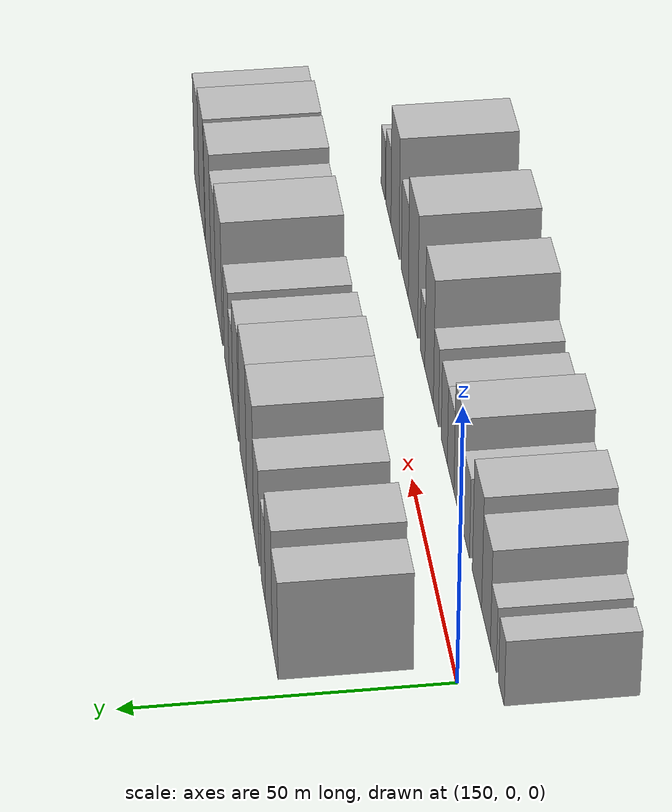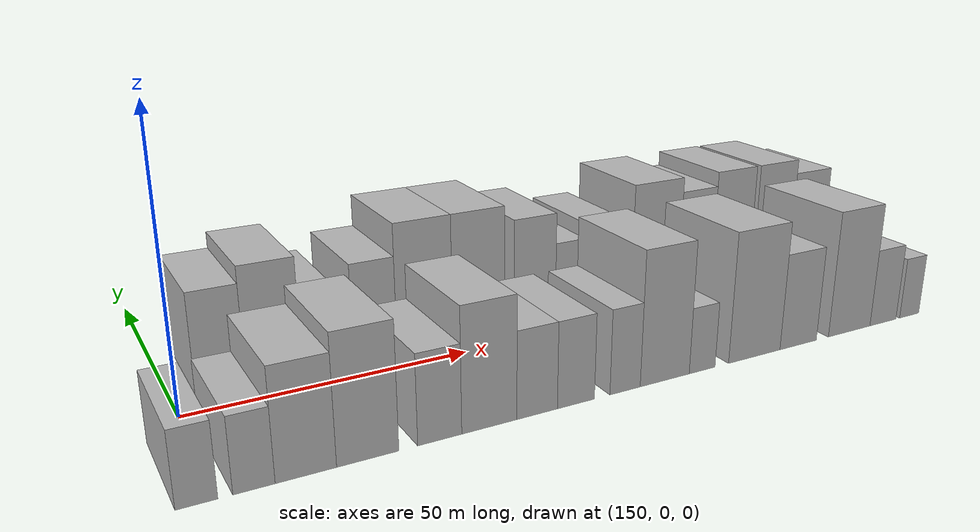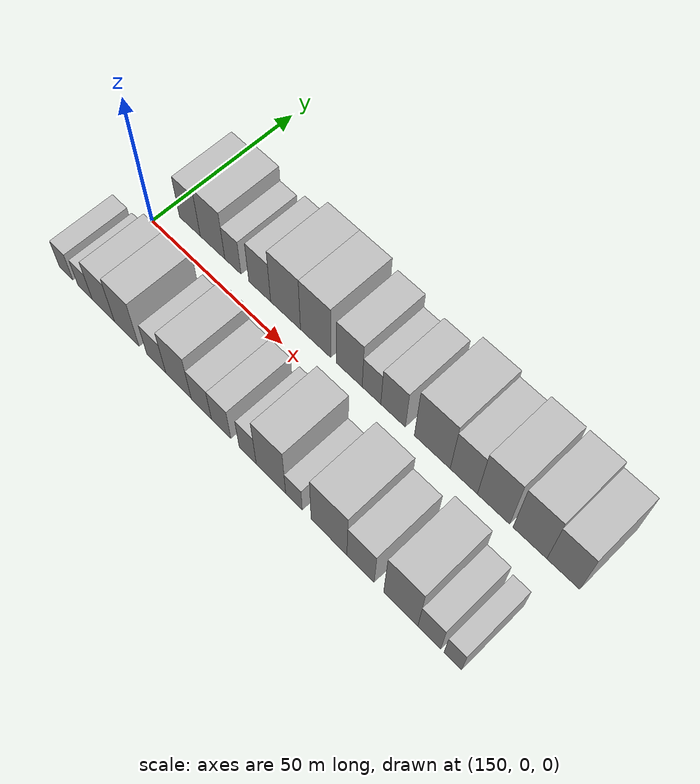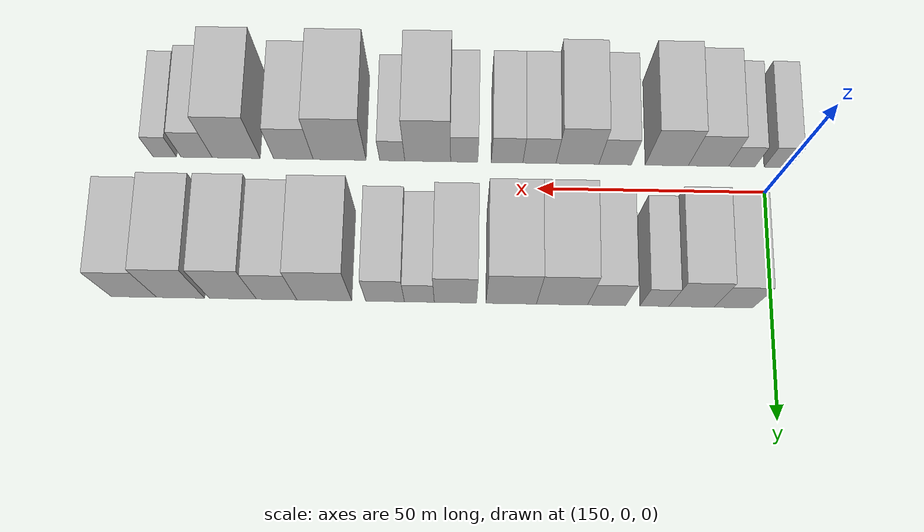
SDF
<sdf version="1.6">
 <world name="default">
  <model name="building_16">
   <static>1</static>
   <pose>158.0715 16.0000 0 0.000000 0.000000 1.570796</pose>
   <link name="link">
    <pose>0 0 9.00 0 0 0</pose>
    <collision name="collision"><geometry><box><size>20.0000 8.2967 18.0000</size></box></geometry></collision>
    <visual name="visual">
     <cast_shadows>0</cast_shadows>
     <geometry><box><size>20.0000 8.2967 18.0000</size></box></geometry>
     <material>
      <script>
       <uri>model://HANNAS_wall/materials/scripts</uri>
       <uri>model://HANNAS_wall/materials/textures</uri>
       <name>vrc/HANNAS_wall</name>
      </script>
     </material>
    </visual>
   </link>
  </model>
  <model name="building_17">
   <static>1</static>
   <pose>167.0354 16.0000 0 0.000000 0.000000 1.570796</pose>
   <link name="link">
    <pose>0 0 10.50 0 0 0</pose>
    <collision name="collision"><geometry><box><size>20.0000 9.6312 21.0000</size></box></geometry></collision>
    <visual name="visual">
     <cast_shadows>0</cast_shadows>
     <geometry><box><size>20.0000 9.6312 21.0000</size></box></geometry>
     <material>
      <script>
       <uri>model://HANNAS_wall/materials/scripts</uri>
       <uri>model://HANNAS_wall/materials/textures</uri>
       <name>vrc/HANNAS_wall</name>
      </script>
     </material>
    </visual>
   </link>
  </model>
  <model name="building_18">
   <static>1</static>
   <pose>174.9630 16.0000 0 0.000000 0.000000 1.570796</pose>
   <link name="link">
    <pose>0 0 7.50 0 0 0</pose>
    <collision name="collision"><geometry><box><size>20.0000 6.2240 15.0000</size></box></geometry></collision>
    <visual name="visual">
     <cast_shadows>0</cast_shadows>
     <geometry><box><size>20.0000 6.2240 15.0000</size></box></geometry>
     <material>
      <script>
       <uri>model://HANNAS_wall/materials/scripts</uri>
       <uri>model://HANNAS_wall/materials/textures</uri>
       <name>vrc/HANNAS_wall</name>
      </script>
     </material>
    </visual>
   </link>
  </model>
  <model name="building_19">
   <static>1</static>
   <pose>185.1741 16.0000 0 0.000000 0.000000 1.570796</pose>
   <link name="link">
    <pose>0 0 9.00 0 0 0</pose>
    <collision name="collision"><geometry><box><size>20.0000 8.1982 18.0000</size></box></geometry></collision>
    <visual name="visual">
     <cast_shadows>0</cast_shadows>
     <geometry><box><size>20.0000 8.1982 18.0000</size></box></geometry>
     <material>
      <script>
       <uri>model://HANNAS_wall/materials/scripts</uri>
       <uri>model://HANNAS_wall/materials/textures</uri>
       <name>vrc/HANNAS_wall</name>
      </script>
     </material>
    </visual>
   </link>
  </model>
  <model name="building_20">
   <static>1</static>
   <pose>194.7635 16.0000 0 0.000000 0.000000 1.570796</pose>
   <link name="link">
    <pose>0 0 12.00 0 0 0</pose>
    <collision name="collision"><geometry><box><size>20.0000 10.9805 24.0000</size></box></geometry></collision>
    <visual name="visual">
     <cast_shadows>0</cast_shadows>
     <geometry><box><size>20.0000 10.9805 24.0000</size></box></geometry>
     <material>
      <script>
       <uri>model://HANNAS_wall/materials/scripts</uri>
       <uri>model://HANNAS_wall/materials/textures</uri>
       <name>vrc/HANNAS_wall</name>
      </script>
     </material>
    </visual>
   </link>
  </model>
  <model name="building_21">
   <static>1</static>
   <pose>205.6644 16.0000 0 0.000000 0.000000 1.570796</pose>
   <link name="link">
    <pose>0 0 12.00 0 0 0</pose>
    <collision name="collision"><geometry><box><size>20.0000 10.8213 24.0000</size></box></geometry></collision>
    <visual name="visual">
     <cast_shadows>0</cast_shadows>
     <geometry><box><size>20.0000 10.8213 24.0000</size></box></geometry>
     <material>
      <script>
       <uri>model://HANNAS_wall/materials/scripts</uri>
       <uri>model://HANNAS_wall/materials/textures</uri>
       <name>vrc/HANNAS_wall</name>
      </script>
     </material>
    </visual>
   </link>
  </model>
  <model name="building_22">
   <static>1</static>
   <pose>217.6033 16.0000 0 0.000000 0.000000 1.570796</pose>
   <link name="link">
    <pose>0 0 10.50 0 0 0</pose>
    <collision name="collision"><geometry><box><size>20.0000 9.0565 21.0000</size></box></geometry></collision>
    <visual name="visual">
     <cast_shadows>0</cast_shadows>
     <geometry><box><size>20.0000 9.0565 21.0000</size></box></geometry>
     <material>
      <script>
       <uri>model://HANNAS_wall/materials/scripts</uri>
       <uri>model://HANNAS_wall/materials/textures</uri>
       <name>vrc/HANNAS_wall</name>
      </script>
     </material>
    </visual>
   </link>
  </model>
  <model name="building_23">
   <static>1</static>
   <pose>225.3275 16.0000 0 0.000000 0.000000 1.570796</pose>
   <link name="link">
    <pose>0 0 7.50 0 0 0</pose>
    <collision name="collision"><geometry><box><size>20.0000 6.3919 15.0000</size></box></geometry></collision>
    <visual name="visual">
     <cast_shadows>0</cast_shadows>
     <geometry><box><size>20.0000 6.3919 15.0000</size></box></geometry>
     <material>
      <script>
       <uri>model://HANNAS_wall/materials/scripts</uri>
       <uri>model://HANNAS_wall/materials/textures</uri>
       <name>vrc/HANNAS_wall</name>
      </script>
     </material>
    </visual>
   </link>
  </model>
  <model name="building_24">
   <static>1</static>
   <pose>232.6744 16.0000 0 0.000000 0.000000 1.570796</pose>
   <link name="link">
    <pose>0 0 9.00 0 0 0</pose>
    <collision name="collision"><geometry><box><size>20.0000 8.3020 18.0000</size></box></geometry></collision>
    <visual name="visual">
     <cast_shadows>0</cast_shadows>
     <geometry><box><size>20.0000 8.3020 18.0000</size></box></geometry>
     <material>
      <script>
       <uri>model://HANNAS_wall/materials/scripts</uri>
       <uri>model://HANNAS_wall/materials/textures</uri>
       <name>vrc/HANNAS_wall</name>
      </script>
     </material>
    </visual>
   </link>
  </model>
  <model name="building_25">
   <static>1</static>
   <pose>245.7042 16.0000 0 0.000000 0.000000 1.570796</pose>
   <link name="link">
    <pose>0 0 12.00 0 0 0</pose>
    <collision name="collision"><geometry><box><size>20.0000 11.7576 24.0000</size></box></geometry></collision>
    <visual name="visual">
     <cast_shadows>0</cast_shadows>
     <geometry><box><size>20.0000 11.7576 24.0000</size></box></geometry>
     <material>
      <script>
       <uri>model://HANNAS_wall/materials/scripts</uri>
       <uri>model://HANNAS_wall/materials/textures</uri>
       <name>vrc/HANNAS_wall</name>
      </script>
     </material>
    </visual>
   </link>
  </model>
  <model name="building_26">
   <static>1</static>
   <pose>255.9266 16.0000 0 0.000000 0.000000 1.570796</pose>
   <link name="link">
    <pose>0 0 10.50 0 0 0</pose>
    <collision name="collision"><geometry><box><size>20.0000 8.6872 21.0000</size></box></geometry></collision>
    <visual name="visual">
     <cast_shadows>0</cast_shadows>
     <geometry><box><size>20.0000 8.6872 21.0000</size></box></geometry>
     <material>
      <script>
       <uri>model://HANNAS_wall/materials/scripts</uri>
       <uri>model://HANNAS_wall/materials/textures</uri>
       <name>vrc/HANNAS_wall</name>
      </script>
     </material>
    </visual>
   </link>
  </model>
  <model name="building_27">
   <static>1</static>
   <pose>265.3321 16.0000 0 0.000000 0.000000 1.570796</pose>
   <link name="link">
    <pose>0 0 12.00 0 0 0</pose>
    <collision name="collision"><geometry><box><size>20.0000 10.1237 24.0000</size></box></geometry></collision>
    <visual name="visual">
     <cast_shadows>0</cast_shadows>
     <geometry><box><size>20.0000 10.1237 24.0000</size></box></geometry>
     <material>
      <script>
       <uri>model://HANNAS_wall/materials/scripts</uri>
       <uri>model://HANNAS_wall/materials/textures</uri>
       <name>vrc/HANNAS_wall</name>
      </script>
     </material>
    </visual>
   </link>
  </model>
  <model name="building_28">
   <static>1</static>
   <pose>276.5536 16.0000 0 0.000000 0.000000 1.570796</pose>
   <link name="link">
    <pose>0 0 12.00 0 0 0</pose>
    <collision name="collision"><geometry><box><size>20.0000 10.3193 24.0000</size></box></geometry></collision>
    <visual name="visual">
     <cast_shadows>0</cast_shadows>
     <geometry><box><size>20.0000 10.3193 24.0000</size></box></geometry>
     <material>
      <script>
       <uri>model://HANNAS_wall/materials/scripts</uri>
       <uri>model://HANNAS_wall/materials/textures</uri>
       <name>vrc/HANNAS_wall</name>
      </script>
     </material>
    </visual>
   </link>
  </model>
  <model name="building_29">
   <static>1</static>
   <pose>286.5973 16.0000 0 0.000000 0.000000 1.570796</pose>
   <link name="link">
    <pose>0 0 10.50 0 0 0</pose>
    <collision name="collision"><geometry><box><size>20.0000 9.7681 21.0000</size></box></geometry></collision>
    <visual name="visual">
     <cast_shadows>0</cast_shadows>
     <geometry><box><size>20.0000 9.7681 21.0000</size></box></geometry>
     <material>
      <script>
       <uri>model://HANNAS_wall/materials/scripts</uri>
       <uri>model://HANNAS_wall/materials/textures</uri>
       <name>vrc/HANNAS_wall</name>
      </script>
     </material>
    </visual>
   </link>
  </model>
  <model name="building_43">
   <static>1</static>
   <pose>146.9252 -16.0000 0 0.000000 0.000000 1.570796</pose>
   <link name="link">
    <pose>0 0 6.00 0 0 0</pose>
    <collision name="collision"><geometry><box><size>20.0000 5.6785 12.0000</size></box></geometry></collision>
    <visual name="visual">
     <cast_shadows>0</cast_shadows>
     <geometry><box><size>20.0000 5.6785 12.0000</size></box></geometry>
     <material>
      <script>
       <uri>model://HANNAS_wall/materials/scripts</uri>
       <uri>model://HANNAS_wall/materials/textures</uri>
       <name>vrc/HANNAS_wall</name>
      </script>
     </material>
    </visual>
   </link>
  </model>
  <model name="building_44">
   <static>1</static>
   <pose>154.7001 -16.0000 0 0.000000 0.000000 1.570796</pose>
   <link name="link">
    <pose>0 0 6.00 0 0 0</pose>
    <collision name="collision"><geometry><box><size>20.0000 5.8713 12.0000</size></box></geometry></collision>
    <visual name="visual">
     <cast_shadows>0</cast_shadows>
     <geometry><box><size>20.0000 5.8713 12.0000</size></box></geometry>
     <material>
      <script>
       <uri>model://HANNAS_wall/materials/scripts</uri>
       <uri>model://HANNAS_wall/materials/textures</uri>
       <name>vrc/HANNAS_wall</name>
      </script>
     </material>
    </visual>
   </link>
  </model>
  <model name="building_45">
   <static>1</static>
   <pose>162.0956 -16.0000 0 0.000000 0.000000 1.570796</pose>
   <link name="link">
    <pose>0 0 9.00 0 0 0</pose>
    <collision name="collision"><geometry><box><size>20.0000 8.9196 18.0000</size></box></geometry></collision>
    <visual name="visual">
     <cast_shadows>0</cast_shadows>
     <geometry><box><size>20.0000 8.9196 18.0000</size></box></geometry>
     <material>
      <script>
       <uri>model://HANNAS_wall/materials/scripts</uri>
       <uri>model://HANNAS_wall/materials/textures</uri>
       <name>vrc/HANNAS_wall</name>
      </script>
     </material>
    </visual>
   </link>
  </model>
  <model name="building_46">
   <static>1</static>
   <pose>171.3405 -16.0000 0 0.000000 0.000000 1.570796</pose>
   <link name="link">
    <pose>0 0 10.50 0 0 0</pose>
    <collision name="collision"><geometry><box><size>20.0000 9.5703 21.0000</size></box></geometry></collision>
    <visual name="visual">
     <cast_shadows>0</cast_shadows>
     <geometry><box><size>20.0000 9.5703 21.0000</size></box></geometry>
     <material>
      <script>
       <uri>model://HANNAS_wall/materials/scripts</uri>
       <uri>model://HANNAS_wall/materials/textures</uri>
       <name>vrc/HANNAS_wall</name>
      </script>
     </material>
    </visual>
   </link>
  </model>
  <model name="building_47">
   <static>1</static>
   <pose>182.7523 -16.0000 0 0.000000 0.000000 1.570796</pose>
   <link name="link">
    <pose>0 0 7.50 0 0 0</pose>
    <collision name="collision"><geometry><box><size>20.0000 7.2532 15.0000</size></box></geometry></collision>
    <visual name="visual">
     <cast_shadows>0</cast_shadows>
     <geometry><box><size>20.0000 7.2532 15.0000</size></box></geometry>
     <material>
      <script>
       <uri>model://HANNAS_wall/materials/scripts</uri>
       <uri>model://HANNAS_wall/materials/textures</uri>
       <name>vrc/HANNAS_wall</name>
      </script>
     </material>
    </visual>
   </link>
  </model>
  <model name="building_48">
   <static>1</static>
   <pose>191.1399 -16.0000 0 0.000000 0.000000 1.570796</pose>
   <link name="link">
    <pose>0 0 10.50 0 0 0</pose>
    <collision name="collision"><geometry><box><size>20.0000 9.5220 21.0000</size></box></geometry></collision>
    <visual name="visual">
     <cast_shadows>0</cast_shadows>
     <geometry><box><size>20.0000 9.5220 21.0000</size></box></geometry>
     <material>
      <script>
       <uri>model://HANNAS_wall/materials/scripts</uri>
       <uri>model://HANNAS_wall/materials/textures</uri>
       <name>vrc/HANNAS_wall</name>
      </script>
     </material>
    </visual>
   </link>
  </model>
  <model name="building_49">
   <static>1</static>
   <pose>199.5719 -16.0000 0 0.000000 0.000000 1.570796</pose>
   <link name="link">
    <pose>0 0 7.50 0 0 0</pose>
    <collision name="collision"><geometry><box><size>20.0000 7.3420 15.0000</size></box></geometry></collision>
    <visual name="visual">
     <cast_shadows>0</cast_shadows>
     <geometry><box><size>20.0000 7.3420 15.0000</size></box></geometry>
     <material>
      <script>
       <uri>model://HANNAS_wall/materials/scripts</uri>
       <uri>model://HANNAS_wall/materials/textures</uri>
       <name>vrc/HANNAS_wall</name>
      </script>
     </material>
    </visual>
   </link>
  </model>
  <model name="building_50">
   <static>1</static>
   <pose>206.7402 -16.0000 0 0.000000 0.000000 1.570796</pose>
   <link name="link">
    <pose>0 0 7.50 0 0 0</pose>
    <collision name="collision"><geometry><box><size>20.0000 6.9946 15.0000</size></box></geometry></collision>
    <visual name="visual">
     <cast_shadows>0</cast_shadows>
     <geometry><box><size>20.0000 6.9946 15.0000</size></box></geometry>
     <material>
      <script>
       <uri>model://HANNAS_wall/materials/scripts</uri>
       <uri>model://HANNAS_wall/materials/textures</uri>
       <name>vrc/HANNAS_wall</name>
      </script>
     </material>
    </visual>
   </link>
  </model>
  <model name="building_51">
   <static>1</static>
   <pose>216.2477 -16.0000 0 0.000000 0.000000 1.570796</pose>
   <link name="link">
    <pose>0 0 7.50 0 0 0</pose>
    <collision name="collision"><geometry><box><size>20.0000 6.0204 15.0000</size></box></geometry></collision>
    <visual name="visual">
     <cast_shadows>0</cast_shadows>
     <geometry><box><size>20.0000 6.0204 15.0000</size></box></geometry>
     <material>
      <script>
       <uri>model://HANNAS_wall/materials/scripts</uri>
       <uri>model://HANNAS_wall/materials/textures</uri>
       <name>vrc/HANNAS_wall</name>
      </script>
     </material>
    </visual>
   </link>
  </model>
  <model name="building_52">
   <static>1</static>
   <pose>224.3405 -16.0000 0 0.000000 0.000000 1.570796</pose>
   <link name="link">
    <pose>0 0 12.00 0 0 0</pose>
    <collision name="collision"><geometry><box><size>20.0000 10.1652 24.0000</size></box></geometry></collision>
    <visual name="visual">
     <cast_shadows>0</cast_shadows>
     <geometry><box><size>20.0000 10.1652 24.0000</size></box></geometry>
     <material>
      <script>
       <uri>model://HANNAS_wall/materials/scripts</uri>
       <uri>model://HANNAS_wall/materials/textures</uri>
       <name>vrc/HANNAS_wall</name>
      </script>
     </material>
    </visual>
   </link>
  </model>
  <model name="building_53">
   <static>1</static>
   <pose>232.2107 -16.0000 0 0.000000 0.000000 1.570796</pose>
   <link name="link">
    <pose>0 0 6.00 0 0 0</pose>
    <collision name="collision"><geometry><box><size>20.0000 5.5753 12.0000</size></box></geometry></collision>
    <visual name="visual">
     <cast_shadows>0</cast_shadows>
     <geometry><box><size>20.0000 5.5753 12.0000</size></box></geometry>
     <material>
      <script>
       <uri>model://HANNAS_wall/materials/scripts</uri>
       <uri>model://HANNAS_wall/materials/textures</uri>
       <name>vrc/HANNAS_wall</name>
      </script>
     </material>
    </visual>
   </link>
  </model>
  <model name="building_54">
   <static>1</static>
   <pose>243.8858 -16.0000 0 0.000000 0.000000 1.570796</pose>
   <link name="link">
    <pose>0 0 12.00 0 0 0</pose>
    <collision name="collision"><geometry><box><size>20.0000 11.7748 24.0000</size></box></geometry></collision>
    <visual name="visual">
     <cast_shadows>0</cast_shadows>
     <geometry><box><size>20.0000 11.7748 24.0000</size></box></geometry>
     <material>
      <script>
       <uri>model://HANNAS_wall/materials/scripts</uri>
       <uri>model://HANNAS_wall/materials/textures</uri>
       <name>vrc/HANNAS_wall</name>
      </script>
     </material>
    </visual>
   </link>
  </model>
  <model name="building_55">
   <static>1</static>
   <pose>254.1599 -16.0000 0 0.000000 0.000000 1.570796</pose>
   <link name="link">
    <pose>0 0 9.00 0 0 0</pose>
    <collision name="collision"><geometry><box><size>20.0000 8.7735 18.0000</size></box></geometry></collision>
    <visual name="visual">
     <cast_shadows>0</cast_shadows>
     <geometry><box><size>20.0000 8.7735 18.0000</size></box></geometry>
     <material>
      <script>
       <uri>model://HANNAS_wall/materials/scripts</uri>
       <uri>model://HANNAS_wall/materials/textures</uri>
       <name>vrc/HANNAS_wall</name>
      </script>
     </material>
    </visual>
   </link>
  </model>
  <model name="building_56">
   <static>1</static>
   <pose>266.8691 -16.0000 0 0.000000 0.000000 1.570796</pose>
   <link name="link">
    <pose>0 0 12.00 0 0 0</pose>
    <collision name="collision"><geometry><box><size>20.0000 10.6447 24.0000</size></box></geometry></collision>
    <visual name="visual">
     <cast_shadows>0</cast_shadows>
     <geometry><box><size>20.0000 10.6447 24.0000</size></box></geometry>
     <material>
      <script>
       <uri>model://HANNAS_wall/materials/scripts</uri>
       <uri>model://HANNAS_wall/materials/textures</uri>
       <name>vrc/HANNAS_wall</name>
      </script>
     </material>
    </visual>
   </link>
  </model>
  <model name="building_57">
   <static>1</static>
   <pose>275.6642 -16.0000 0 0.000000 0.000000 1.570796</pose>
   <link name="link">
    <pose>0 0 7.50 0 0 0</pose>
    <collision name="collision"><geometry><box><size>20.0000 6.9455 15.0000</size></box></geometry></collision>
    <visual name="visual">
     <cast_shadows>0</cast_shadows>
     <geometry><box><size>20.0000 6.9455 15.0000</size></box></geometry>
     <material>
      <script>
       <uri>model://HANNAS_wall/materials/scripts</uri>
       <uri>model://HANNAS_wall/materials/textures</uri>
       <name>vrc/HANNAS_wall</name>
      </script>
     </material>
    </visual>
   </link>
  </model>
  <model name="building_58">
   <static>1</static>
   <pose>282.7604 -16.0000 0 0.000000 0.000000 1.570796</pose>
   <link name="link">
    <pose>0 0 6.00 0 0 0</pose>
    <collision name="collision"><geometry><box><size>20.0000 5.2469 12.0000</size></box></geometry></collision>
    <visual name="visual">
     <cast_shadows>0</cast_shadows>
     <geometry><box><size>20.0000 5.2469 12.0000</size></box></geometry>
     <material>
      <script>
       <uri>model://HANNAS_wall/materials/scripts</uri>
       <uri>model://HANNAS_wall/materials/textures</uri>
       <name>vrc/HANNAS_wall</name>
      </script>
     </material>
    </visual>
   </link>
  </model>
 </world>
</sdf>
